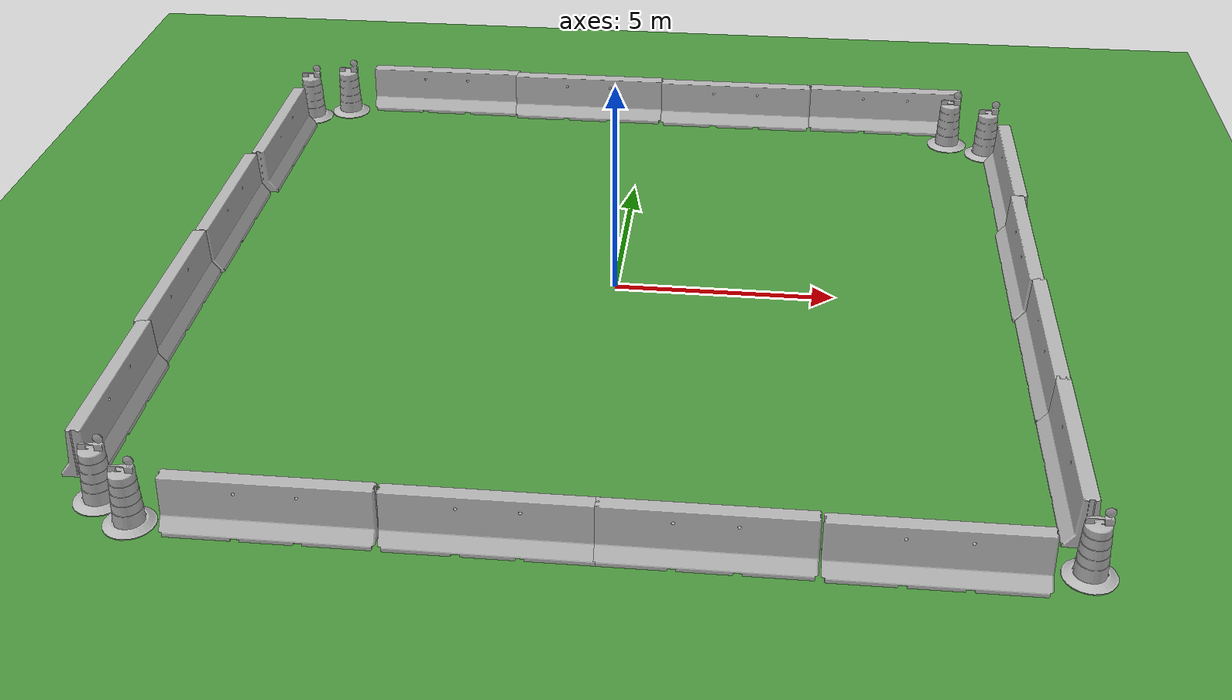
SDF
<sdf version="1.6">
 <world name="default">
  <light name="sun" type="directional">
   <pose>0 0 10 0 -0 0</pose>
   <diffuse>0.8 0.8 0.8 1</diffuse>
   <specular>0.2 0.2 0.2 1</specular>
   <attenuation>
    <range>1000</range>
    <constant>0.9</constant>
    <linear>0.01</linear>
    <quadratic>0.001</quadratic>
   </attenuation>
   <direction>-0.5 0.1 -0.9</direction>
  </light>
  <model name="ground_plane">
   <static>1</static>
   <link name="link">
    <collision name="collision">
     <geometry><plane><normal>0 0 1</normal><size>100 100</size></plane></geometry>
     <surface><friction><ode><mu>100</mu><mu2>50</mu2></ode></friction></surface>
    </collision>
    <visual name="visual">
     <cast_shadows>false</cast_shadows>
     <geometry><plane><normal>0 0 1</normal><size>20 20</size></plane></geometry>
     <material>
      <script>
       <uri>model://jardim/materials/scripts</uri>
       <uri>model://jardim/materials/texture</uri>
       <name>vrc/grass</name>
      </script>
     </material>
    </visual>
   </link>
  </model>
  <gravity>0 0 -9.8</gravity>
  <magnetic_field>6e-06 2.3e-05 -4.2e-05</magnetic_field>
  <atmosphere type="adiabatic"/>
  <physics name="default_physics" default="0" type="ode">
   <max_step_size>0.001</max_step_size>
   <real_time_factor>1</real_time_factor>
   <real_time_update_rate>1000</real_time_update_rate>
  </physics>
  <scene><ambient>0.4 0.4 0.4 1</ambient><background>0.7 0.7 0.7 1</background><shadows>1</shadows></scene>
  <spherical_coordinates>
   <surface_model>EARTH_WGS84</surface_model>
   <latitude_deg>0</latitude_deg>
   <longitude_deg>0</longitude_deg>
   <elevation>0</elevation>
   <heading_deg>0</heading_deg>
  </spherical_coordinates>
  <model name="jersey_barrier">
   <static>1</static>
   <link name="link">
    <visual name="visual">
     <geometry><mesh><uri>model://jersey_barrier/meshes/jersey_barrier.dae</uri></mesh></geometry>
    </visual>
    <collision name="upright">
     <pose>0 0 0.5715 0 -0 0</pose>
     <geometry><box><size>4.06542 0.3063 1.143</size></box></geometry>
    </collision>
    <collision name="base">
     <pose>0 0 0.032258 0 -0 0</pose>
     <geometry><box><size>4.06542 0.8107 0.064516</size></box></geometry>
    </collision>
    <collision name="base2">
     <pose>0 0 0.1 0 -0 0</pose>
     <geometry><box><size>4.06542 0.65 0.1</size></box></geometry>
    </collision>
    <collision name="base3">
     <pose>0 0 0.2 0 -0 0</pose>
     <geometry><box><size>4.06542 0.5 0.1</size></box></geometry>
    </collision>
    <collision name="left-angle">
     <pose>0 -0.224 0.2401 0.9 -0 0</pose>
     <geometry><box><size>4.06542 0.5 0.064516</size></box></geometry>
    </collision>
    <collision name="right-angle">
     <pose>0 0.224 0.2401 -0.9 0 0</pose>
     <geometry><box><size>4.06542 0.5 0.064516</size></box></geometry>
    </collision>
   </link>
   <pose>-5.65677 9.4608 0 0 -0 0</pose>
  </model>
  <model name="jersey_barrier_clone">
   <static>1</static>
   <link name="link">
    <visual name="visual">
     <geometry><mesh><uri>model://jersey_barrier/meshes/jersey_barrier.dae</uri></mesh></geometry>
    </visual>
    <collision name="upright">
     <pose>0 0 0.5715 0 -0 0</pose>
     <geometry><box><size>4.06542 0.3063 1.143</size></box></geometry>
    </collision>
    <collision name="base">
     <pose>0 0 0.032258 0 -0 0</pose>
     <geometry><box><size>4.06542 0.8107 0.064516</size></box></geometry>
    </collision>
    <collision name="base2">
     <pose>0 0 0.1 0 -0 0</pose>
     <geometry><box><size>4.06542 0.65 0.1</size></box></geometry>
    </collision>
    <collision name="base3">
     <pose>0 0 0.2 0 -0 0</pose>
     <geometry><box><size>4.06542 0.5 0.1</size></box></geometry>
    </collision>
    <collision name="left-angle">
     <pose>0 -0.224 0.2401 0.9 -0 0</pose>
     <geometry><box><size>4.06542 0.5 0.064516</size></box></geometry>
    </collision>
    <collision name="right-angle">
     <pose>0 0.224 0.2401 -0.9 0 0</pose>
     <geometry><box><size>4.06542 0.5 0.064516</size></box></geometry>
    </collision>
   </link>
   <pose>-1.65987 9.36075 0 0 -0 0</pose>
  </model>
  <model name="jersey_barrier_clone_0">
   <static>1</static>
   <link name="link">
    <visual name="visual">
     <geometry><mesh><uri>model://jersey_barrier/meshes/jersey_barrier.dae</uri></mesh></geometry>
    </visual>
    <collision name="upright">
     <pose>0 0 0.5715 0 -0 0</pose>
     <geometry><box><size>4.06542 0.3063 1.143</size></box></geometry>
    </collision>
    <collision name="base">
     <pose>0 0 0.032258 0 -0 0</pose>
     <geometry><box><size>4.06542 0.8107 0.064516</size></box></geometry>
    </collision>
    <collision name="base2">
     <pose>0 0 0.1 0 -0 0</pose>
     <geometry><box><size>4.06542 0.65 0.1</size></box></geometry>
    </collision>
    <collision name="base3">
     <pose>0 0 0.2 0 -0 0</pose>
     <geometry><box><size>4.06542 0.5 0.1</size></box></geometry>
    </collision>
    <collision name="left-angle">
     <pose>0 -0.224 0.2401 0.9 -0 0</pose>
     <geometry><box><size>4.06542 0.5 0.064516</size></box></geometry>
    </collision>
    <collision name="right-angle">
     <pose>0 0.224 0.2401 -0.9 0 0</pose>
     <geometry><box><size>4.06542 0.5 0.064516</size></box></geometry>
    </collision>
   </link>
   <pose>2.39773 9.29085 0 0 -0 0</pose>
  </model>
  <model name="jersey_barrier_clone_1">
   <static>1</static>
   <link name="link">
    <visual name="visual">
     <geometry><mesh><uri>model://jersey_barrier/meshes/jersey_barrier.dae</uri></mesh></geometry>
    </visual>
    <collision name="upright">
     <pose>0 0 0.5715 0 -0 0</pose>
     <geometry><box><size>4.06542 0.3063 1.143</size></box></geometry>
    </collision>
    <collision name="base">
     <pose>0 0 0.032258 0 -0 0</pose>
     <geometry><box><size>4.06542 0.8107 0.064516</size></box></geometry>
    </collision>
    <collision name="base2">
     <pose>0 0 0.1 0 -0 0</pose>
     <geometry><box><size>4.06542 0.65 0.1</size></box></geometry>
    </collision>
    <collision name="base3">
     <pose>0 0 0.2 0 -0 0</pose>
     <geometry><box><size>4.06542 0.5 0.1</size></box></geometry>
    </collision>
    <collision name="left-angle">
     <pose>0 -0.224 0.2401 0.9 -0 0</pose>
     <geometry><box><size>4.06542 0.5 0.064516</size></box></geometry>
    </collision>
    <collision name="right-angle">
     <pose>0 0.224 0.2401 -0.9 0 0</pose>
     <geometry><box><size>4.06542 0.5 0.064516</size></box></geometry>
    </collision>
   </link>
   <pose>6.45464 9.33993 0 0 -0 0</pose>
  </model>
  <model name="jersey_barrier_clone_3">
   <static>1</static>
   <link name="link">
    <visual name="visual">
     <geometry><mesh><uri>model://jersey_barrier/meshes/jersey_barrier.dae</uri></mesh></geometry>
    </visual>
    <collision name="upright">
     <pose>0 0 0.5715 0 -0 0</pose>
     <geometry><box><size>4.06542 0.3063 1.143</size></box></geometry>
    </collision>
    <collision name="base">
     <pose>0 0 0.032258 0 -0 0</pose>
     <geometry><box><size>4.06542 0.8107 0.064516</size></box></geometry>
    </collision>
    <collision name="base2">
     <pose>0 0 0.1 0 -0 0</pose>
     <geometry><box><size>4.06542 0.65 0.1</size></box></geometry>
    </collision>
    <collision name="base3">
     <pose>0 0 0.2 0 -0 0</pose>
     <geometry><box><size>4.06542 0.5 0.1</size></box></geometry>
    </collision>
    <collision name="left-angle">
     <pose>0 -0.224 0.2401 0.9 -0 0</pose>
     <geometry><box><size>4.06542 0.5 0.064516</size></box></geometry>
    </collision>
    <collision name="right-angle">
     <pose>0 0.224 0.2401 -0.9 0 0</pose>
     <geometry><box><size>4.06542 0.5 0.064516</size></box></geometry>
    </collision>
   </link>
   <pose>9.44656 5.35522 0 0 0 -1.56865</pose>
  </model>
  <model name="jersey_barrier_clone_3_clone">
   <static>1</static>
   <link name="link">
    <visual name="visual">
     <geometry><mesh><uri>model://jersey_barrier/meshes/jersey_barrier.dae</uri></mesh></geometry>
    </visual>
    <collision name="upright">
     <pose>0 0 0.5715 0 -0 0</pose>
     <geometry><box><size>4.06542 0.3063 1.143</size></box></geometry>
    </collision>
    <collision name="base">
     <pose>0 0 0.032258 0 -0 0</pose>
     <geometry><box><size>4.06542 0.8107 0.064516</size></box></geometry>
    </collision>
    <collision name="base2">
     <pose>0 0 0.1 0 -0 0</pose>
     <geometry><box><size>4.06542 0.65 0.1</size></box></geometry>
    </collision>
    <collision name="base3">
     <pose>0 0 0.2 0 -0 0</pose>
     <geometry><box><size>4.06542 0.5 0.1</size></box></geometry>
    </collision>
    <collision name="left-angle">
     <pose>0 -0.224 0.2401 0.9 -0 0</pose>
     <geometry><box><size>4.06542 0.5 0.064516</size></box></geometry>
    </collision>
    <collision name="right-angle">
     <pose>0 0.224 0.2401 -0.9 0 0</pose>
     <geometry><box><size>4.06542 0.5 0.064516</size></box></geometry>
    </collision>
   </link>
   <pose>9.3727 1.33119 0 0 0 -1.56865</pose>
  </model>
  <model name="jersey_barrier_clone_3_clone_0">
   <static>1</static>
   <link name="link">
    <visual name="visual">
     <geometry><mesh><uri>model://jersey_barrier/meshes/jersey_barrier.dae</uri></mesh></geometry>
    </visual>
    <collision name="upright">
     <pose>0 0 0.5715 0 -0 0</pose>
     <geometry><box><size>4.06542 0.3063 1.143</size></box></geometry>
    </collision>
    <collision name="base">
     <pose>0 0 0.032258 0 -0 0</pose>
     <geometry><box><size>4.06542 0.8107 0.064516</size></box></geometry>
    </collision>
    <collision name="base2">
     <pose>0 0 0.1 0 -0 0</pose>
     <geometry><box><size>4.06542 0.65 0.1</size></box></geometry>
    </collision>
    <collision name="base3">
     <pose>0 0 0.2 0 -0 0</pose>
     <geometry><box><size>4.06542 0.5 0.1</size></box></geometry>
    </collision>
    <collision name="left-angle">
     <pose>0 -0.224 0.2401 0.9 -0 0</pose>
     <geometry><box><size>4.06542 0.5 0.064516</size></box></geometry>
    </collision>
    <collision name="right-angle">
     <pose>0 0.224 0.2401 -0.9 0 0</pose>
     <geometry><box><size>4.06542 0.5 0.064516</size></box></geometry>
    </collision>
   </link>
   <pose>9.4315 -2.6268 0 0 0 -1.56865</pose>
  </model>
  <model name="jersey_barrier_clone_3_clone_1">
   <static>1</static>
   <link name="link">
    <visual name="visual">
     <geometry><mesh><uri>model://jersey_barrier/meshes/jersey_barrier.dae</uri></mesh></geometry>
    </visual>
    <collision name="upright">
     <pose>0 0 0.5715 0 -0 0</pose>
     <geometry><box><size>4.06542 0.3063 1.143</size></box></geometry>
    </collision>
    <collision name="base">
     <pose>0 0 0.032258 0 -0 0</pose>
     <geometry><box><size>4.06542 0.8107 0.064516</size></box></geometry>
    </collision>
    <collision name="base2">
     <pose>0 0 0.1 0 -0 0</pose>
     <geometry><box><size>4.06542 0.65 0.1</size></box></geometry>
    </collision>
    <collision name="base3">
     <pose>0 0 0.2 0 -0 0</pose>
     <geometry><box><size>4.06542 0.5 0.1</size></box></geometry>
    </collision>
    <collision name="left-angle">
     <pose>0 -0.224 0.2401 0.9 -0 0</pose>
     <geometry><box><size>4.06542 0.5 0.064516</size></box></geometry>
    </collision>
    <collision name="right-angle">
     <pose>0 0.224 0.2401 -0.9 0 0</pose>
     <geometry><box><size>4.06542 0.5 0.064516</size></box></geometry>
    </collision>
   </link>
   <pose>9.44969 -6.53485 0 0 0 -1.56865</pose>
  </model>
  <model name="jersey_barrier_clone_2_clone">
   <static>1</static>
   <link name="link">
    <visual name="visual">
     <geometry><mesh><uri>model://jersey_barrier/meshes/jersey_barrier.dae</uri></mesh></geometry>
    </visual>
    <collision name="upright">
     <pose>0 0 0.5715 0 -0 0</pose>
     <geometry><box><size>4.06542 0.3063 1.143</size></box></geometry>
    </collision>
    <collision name="base">
     <pose>0 0 0.032258 0 -0 0</pose>
     <geometry><box><size>4.06542 0.8107 0.064516</size></box></geometry>
    </collision>
    <collision name="base2">
     <pose>0 0 0.1 0 -0 0</pose>
     <geometry><box><size>4.06542 0.65 0.1</size></box></geometry>
    </collision>
    <collision name="base3">
     <pose>0 0 0.2 0 -0 0</pose>
     <geometry><box><size>4.06542 0.5 0.1</size></box></geometry>
    </collision>
    <collision name="left-angle">
     <pose>0 -0.224 0.2401 0.9 -0 0</pose>
     <geometry><box><size>4.06542 0.5 0.064516</size></box></geometry>
    </collision>
    <collision name="right-angle">
     <pose>0 0.224 0.2401 -0.9 0 0</pose>
     <geometry><box><size>4.06542 0.5 0.064516</size></box></geometry>
    </collision>
   </link>
   <pose>6.70657 -9.54347 0 0 -0 0</pose>
  </model>
  <model name="jersey_barrier_clone_2_clone_0">
   <static>1</static>
   <link name="link">
    <visual name="visual">
     <geometry><mesh><uri>model://jersey_barrier/meshes/jersey_barrier.dae</uri></mesh></geometry>
    </visual>
    <collision name="upright">
     <pose>0 0 0.5715 0 -0 0</pose>
     <geometry><box><size>4.06542 0.3063 1.143</size></box></geometry>
    </collision>
    <collision name="base">
     <pose>0 0 0.032258 0 -0 0</pose>
     <geometry><box><size>4.06542 0.8107 0.064516</size></box></geometry>
    </collision>
    <collision name="base2">
     <pose>0 0 0.1 0 -0 0</pose>
     <geometry><box><size>4.06542 0.65 0.1</size></box></geometry>
    </collision>
    <collision name="base3">
     <pose>0 0 0.2 0 -0 0</pose>
     <geometry><box><size>4.06542 0.5 0.1</size></box></geometry>
    </collision>
    <collision name="left-angle">
     <pose>0 -0.224 0.2401 0.9 -0 0</pose>
     <geometry><box><size>4.06542 0.5 0.064516</size></box></geometry>
    </collision>
    <collision name="right-angle">
     <pose>0 0.224 0.2401 -0.9 0 0</pose>
     <geometry><box><size>4.06542 0.5 0.064516</size></box></geometry>
    </collision>
   </link>
   <pose>2.59616 -9.50928 0 0 -0 0</pose>
  </model>
  <model name="jersey_barrier_clone_2_clone_1">
   <static>1</static>
   <link name="link">
    <visual name="visual">
     <geometry><mesh><uri>model://jersey_barrier/meshes/jersey_barrier.dae</uri></mesh></geometry>
    </visual>
    <collision name="upright">
     <pose>0 0 0.5715 0 -0 0</pose>
     <geometry><box><size>4.06542 0.3063 1.143</size></box></geometry>
    </collision>
    <collision name="base">
     <pose>0 0 0.032258 0 -0 0</pose>
     <geometry><box><size>4.06542 0.8107 0.064516</size></box></geometry>
    </collision>
    <collision name="base2">
     <pose>0 0 0.1 0 -0 0</pose>
     <geometry><box><size>4.06542 0.65 0.1</size></box></geometry>
    </collision>
    <collision name="base3">
     <pose>0 0 0.2 0 -0 0</pose>
     <geometry><box><size>4.06542 0.5 0.1</size></box></geometry>
    </collision>
    <collision name="left-angle">
     <pose>0 -0.224 0.2401 0.9 -0 0</pose>
     <geometry><box><size>4.06542 0.5 0.064516</size></box></geometry>
    </collision>
    <collision name="right-angle">
     <pose>0 0.224 0.2401 -0.9 0 0</pose>
     <geometry><box><size>4.06542 0.5 0.064516</size></box></geometry>
    </collision>
   </link>
   <pose>-1.33414 -9.50852 0 0 -0 0</pose>
  </model>
  <model name="jersey_barrier_clone_2_clone_2">
   <static>1</static>
   <link name="link">
    <visual name="visual">
     <geometry><mesh><uri>model://jersey_barrier/meshes/jersey_barrier.dae</uri></mesh></geometry>
    </visual>
    <collision name="upright">
     <pose>0 0 0.5715 0 -0 0</pose>
     <geometry><box><size>4.06542 0.3063 1.143</size></box></geometry>
    </collision>
    <collision name="base">
     <pose>0 0 0.032258 0 -0 0</pose>
     <geometry><box><size>4.06542 0.8107 0.064516</size></box></geometry>
    </collision>
    <collision name="base2">
     <pose>0 0 0.1 0 -0 0</pose>
     <geometry><box><size>4.06542 0.65 0.1</size></box></geometry>
    </collision>
    <collision name="base3">
     <pose>0 0 0.2 0 -0 0</pose>
     <geometry><box><size>4.06542 0.5 0.1</size></box></geometry>
    </collision>
    <collision name="left-angle">
     <pose>0 -0.224 0.2401 0.9 -0 0</pose>
     <geometry><box><size>4.06542 0.5 0.064516</size></box></geometry>
    </collision>
    <collision name="right-angle">
     <pose>0 0.224 0.2401 -0.9 0 0</pose>
     <geometry><box><size>4.06542 0.5 0.064516</size></box></geometry>
    </collision>
   </link>
   <pose>-5.44605 -9.49634 0 0 -0 0</pose>
  </model>
  <model name="jersey_barrier_clone_3_clone_1_clone">
   <static>1</static>
   <link name="link">
    <visual name="visual">
     <geometry><mesh><uri>model://jersey_barrier/meshes/jersey_barrier.dae</uri></mesh></geometry>
    </visual>
    <collision name="upright">
     <pose>0 0 0.5715 0 -0 0</pose>
     <geometry><box><size>4.06542 0.3063 1.143</size></box></geometry>
    </collision>
    <collision name="base">
     <pose>0 0 0.032258 0 -0 0</pose>
     <geometry><box><size>4.06542 0.8107 0.064516</size></box></geometry>
    </collision>
    <collision name="base2">
     <pose>0 0 0.1 0 -0 0</pose>
     <geometry><box><size>4.06542 0.65 0.1</size></box></geometry>
    </collision>
    <collision name="base3">
     <pose>0 0 0.2 0 -0 0</pose>
     <geometry><box><size>4.06542 0.5 0.1</size></box></geometry>
    </collision>
    <collision name="left-angle">
     <pose>0 -0.224 0.2401 0.9 -0 0</pose>
     <geometry><box><size>4.06542 0.5 0.064516</size></box></geometry>
    </collision>
    <collision name="right-angle">
     <pose>0 0.224 0.2401 -0.9 0 0</pose>
     <geometry><box><size>4.06542 0.5 0.064516</size></box></geometry>
    </collision>
   </link>
   <pose>-9.54289 -6.33149 0 0 0 -1.56865</pose>
  </model>
  <model name="jersey_barrier_clone_3_clone_1_clone_0">
   <static>1</static>
   <link name="link">
    <visual name="visual">
     <geometry><mesh><uri>model://jersey_barrier/meshes/jersey_barrier.dae</uri></mesh></geometry>
    </visual>
    <collision name="upright">
     <pose>0 0 0.5715 0 -0 0</pose>
     <geometry><box><size>4.06542 0.3063 1.143</size></box></geometry>
    </collision>
    <collision name="base">
     <pose>0 0 0.032258 0 -0 0</pose>
     <geometry><box><size>4.06542 0.8107 0.064516</size></box></geometry>
    </collision>
    <collision name="base2">
     <pose>0 0 0.1 0 -0 0</pose>
     <geometry><box><size>4.06542 0.65 0.1</size></box></geometry>
    </collision>
    <collision name="base3">
     <pose>0 0 0.2 0 -0 0</pose>
     <geometry><box><size>4.06542 0.5 0.1</size></box></geometry>
    </collision>
    <collision name="left-angle">
     <pose>0 -0.224 0.2401 0.9 -0 0</pose>
     <geometry><box><size>4.06542 0.5 0.064516</size></box></geometry>
    </collision>
    <collision name="right-angle">
     <pose>0 0.224 0.2401 -0.9 0 0</pose>
     <geometry><box><size>4.06542 0.5 0.064516</size></box></geometry>
    </collision>
   </link>
   <pose>-9.6221 -2.35336 0 0 0 -1.56865</pose>
  </model>
  <model name="jersey_barrier_clone_3_clone_1_clone_1">
   <static>1</static>
   <link name="link">
    <visual name="visual">
     <geometry><mesh><uri>model://jersey_barrier/meshes/jersey_barrier.dae</uri></mesh></geometry>
    </visual>
    <collision name="upright">
     <pose>0 0 0.5715 0 -0 0</pose>
     <geometry><box><size>4.06542 0.3063 1.143</size></box></geometry>
    </collision>
    <collision name="base">
     <pose>0 0 0.032258 0 -0 0</pose>
     <geometry><box><size>4.06542 0.8107 0.064516</size></box></geometry>
    </collision>
    <collision name="base2">
     <pose>0 0 0.1 0 -0 0</pose>
     <geometry><box><size>4.06542 0.65 0.1</size></box></geometry>
    </collision>
    <collision name="base3">
     <pose>0 0 0.2 0 -0 0</pose>
     <geometry><box><size>4.06542 0.5 0.1</size></box></geometry>
    </collision>
    <collision name="left-angle">
     <pose>0 -0.224 0.2401 0.9 -0 0</pose>
     <geometry><box><size>4.06542 0.5 0.064516</size></box></geometry>
    </collision>
    <collision name="right-angle">
     <pose>0 0.224 0.2401 -0.9 0 0</pose>
     <geometry><box><size>4.06542 0.5 0.064516</size></box></geometry>
    </collision>
   </link>
   <pose>-9.58952 1.69745 0 0 0 -1.56865</pose>
  </model>
  <model name="jersey_barrier_clone_3_clone_1_clone_2">
   <static>1</static>
   <link name="link">
    <visual name="visual">
     <geometry><mesh><uri>model://jersey_barrier/meshes/jersey_barrier.dae</uri></mesh></geometry>
    </visual>
    <collision name="upright">
     <pose>0 0 0.5715 0 -0 0</pose>
     <geometry><box><size>4.06542 0.3063 1.143</size></box></geometry>
    </collision>
    <collision name="base">
     <pose>0 0 0.032258 0 -0 0</pose>
     <geometry><box><size>4.06542 0.8107 0.064516</size></box></geometry>
    </collision>
    <collision name="base2">
     <pose>0 0 0.1 0 -0 0</pose>
     <geometry><box><size>4.06542 0.65 0.1</size></box></geometry>
    </collision>
    <collision name="base3">
     <pose>0 0 0.2 0 -0 0</pose>
     <geometry><box><size>4.06542 0.5 0.1</size></box></geometry>
    </collision>
    <collision name="left-angle">
     <pose>0 -0.224 0.2401 0.9 -0 0</pose>
     <geometry><box><size>4.06542 0.5 0.064516</size></box></geometry>
    </collision>
    <collision name="right-angle">
     <pose>0 0.224 0.2401 -0.9 0 0</pose>
     <geometry><box><size>4.06542 0.5 0.064516</size></box></geometry>
    </collision>
   </link>
   <pose>-9.44715 5.83721 0 0 0 -1.56865</pose>
  </model>
  <model name="Construction Barrel">
   <link name="link">
    <inertial>
     <pose>0 0 0.4 0 -0 0</pose>
     <mass>500</mass>
     <inertia><ixx>51.2096</ixx><iyy>51.2096</iyy><izz>25</izz><ixy>0</ixy><ixz>0</ixz><iyz>0</iyz></inertia>
    </inertial>
    <collision name="collision">
     <geometry><mesh><uri>model://construction_barrel/meshes/construction_barrel.dae</uri></mesh></geometry>
    </collision>
    <visual name="visual">
     <geometry><mesh><uri>model://construction_barrel/meshes/construction_barrel.dae</uri></mesh></geometry>
    </visual>
   </link>
   <pose>9.07455 7.91066 -0 1e-06 -1e-06 -1.2e-05</pose>
  </model>
  <model name="Construction Barrel_0">
   <link name="link">
    <inertial>
     <pose>0 0 0.4 0 -0 0</pose>
     <mass>500</mass>
     <inertia><ixx>51.2096</ixx><iyy>51.2096</iyy><izz>25</izz><ixy>0</ixy><ixz>0</ixz><iyz>0</iyz></inertia>
    </inertial>
    <collision name="collision">
     <geometry><mesh><uri>model://construction_barrel/meshes/construction_barrel.dae</uri></mesh></geometry>
    </collision>
    <visual name="visual">
     <geometry><mesh><uri>model://construction_barrel/meshes/construction_barrel.dae</uri></mesh></geometry>
    </visual>
   </link>
   <pose>8.12841 8.41647 -1e-06 0 5e-06 -1e-05</pose>
  </model>
  <model name="Construction Barrel_1">
   <link name="link">
    <inertial>
     <pose>0 0 0.4 0 -0 0</pose>
     <mass>500</mass>
     <inertia><ixx>51.2096</ixx><iyy>51.2096</iyy><izz>25</izz><ixy>0</ixy><ixz>0</ixz><iyz>0</iyz></inertia>
    </inertial>
    <collision name="collision">
     <geometry><mesh><uri>model://construction_barrel/meshes/construction_barrel.dae</uri></mesh></geometry>
    </collision>
    <visual name="visual">
     <geometry><mesh><uri>model://construction_barrel/meshes/construction_barrel.dae</uri></mesh></geometry>
    </visual>
   </link>
   <pose>-9.27248 8.48402 -2e-06 -0 7e-06 -8e-06</pose>
  </model>
  <model name="Construction Barrel_2">
   <link name="link">
    <inertial>
     <pose>0 0 0.4 0 -0 0</pose>
     <mass>500</mass>
     <inertia><ixx>51.2096</ixx><iyy>51.2096</iyy><izz>25</izz><ixy>0</ixy><ixz>0</ixz><iyz>0</iyz></inertia>
    </inertial>
    <collision name="collision">
     <geometry><mesh><uri>model://construction_barrel/meshes/construction_barrel.dae</uri></mesh></geometry>
    </collision>
    <visual name="visual">
     <geometry><mesh><uri>model://construction_barrel/meshes/construction_barrel.dae</uri></mesh></geometry>
    </visual>
   </link>
   <pose>-8.34346 8.93865 -1e-06 3e-06 1e-05 -7e-06</pose>
  </model>
  <model name="Construction Barrel_3">
   <link name="link">
    <inertial>
     <pose>0 0 0.4 0 -0 0</pose>
     <mass>500</mass>
     <inertia><ixx>51.2096</ixx><iyy>51.2096</iyy><izz>25</izz><ixy>0</ixy><ixz>0</ixz><iyz>0</iyz></inertia>
    </inertial>
    <collision name="collision">
     <geometry><mesh><uri>model://construction_barrel/meshes/construction_barrel.dae</uri></mesh></geometry>
    </collision>
    <visual name="visual">
     <geometry><mesh><uri>model://construction_barrel/meshes/construction_barrel.dae</uri></mesh></geometry>
    </visual>
   </link>
   <pose>9.45372 -9.29422 1e-06 2e-06 3e-06 -6e-06</pose>
  </model>
  <model name="Construction Barrel_4">
   <link name="link">
    <inertial>
     <pose>0 0 0.4 0 -0 0</pose>
     <mass>500</mass>
     <inertia><ixx>51.2096</ixx><iyy>51.2096</iyy><izz>25</izz><ixy>0</ixy><ixz>0</ixz><iyz>0</iyz></inertia>
    </inertial>
    <collision name="collision">
     <geometry><mesh><uri>model://construction_barrel/meshes/construction_barrel.dae</uri></mesh></geometry>
    </collision>
    <visual name="visual">
     <geometry><mesh><uri>model://construction_barrel/meshes/construction_barrel.dae</uri></mesh></geometry>
    </visual>
   </link>
   <pose>-8.13308 -9.57165 -0 0 0 -0.000402</pose>
  </model>
  <model name="Construction Barrel_5">
   <link name="link">
    <inertial>
     <pose>0 0 0.4 0 -0 0</pose>
     <mass>500</mass>
     <inertia><ixx>51.2096</ixx><iyy>51.2096</iyy><izz>25</izz><ixy>0</ixy><ixz>0</ixz><iyz>0</iyz></inertia>
    </inertial>
    <collision name="collision">
     <geometry><mesh><uri>model://construction_barrel/meshes/construction_barrel.dae</uri></mesh></geometry>
    </collision>
    <visual name="visual">
     <geometry><mesh><uri>model://construction_barrel/meshes/construction_barrel.dae</uri></mesh></geometry>
    </visual>
   </link>
   <pose>-8.93836 -8.95997 -2e-06 -4e-06 7e-06 -0.000269</pose>
  </model>
 </world>
</sdf>
